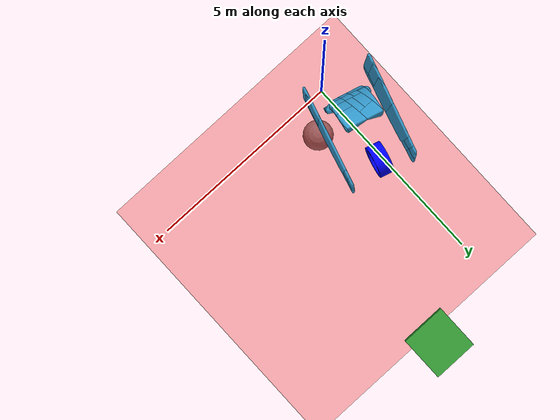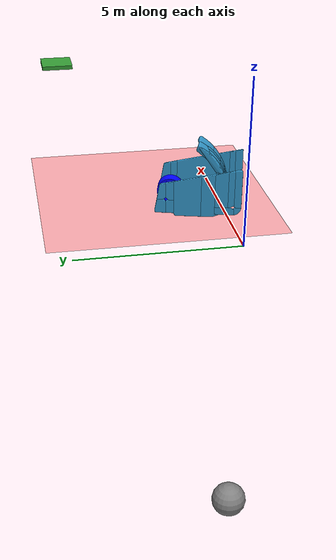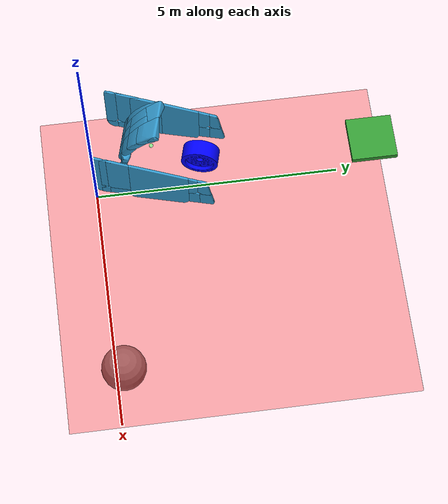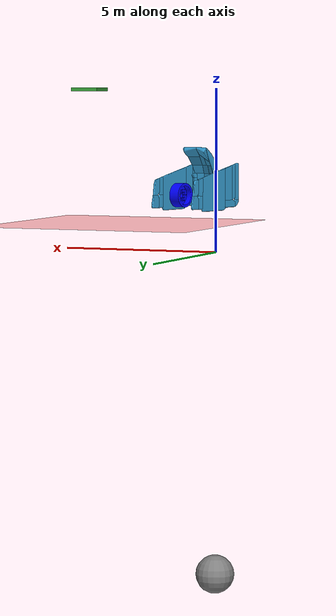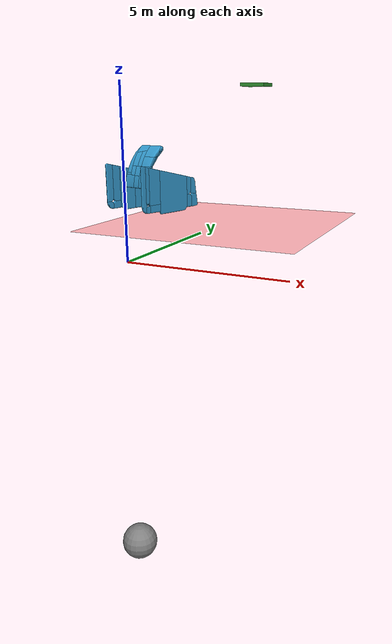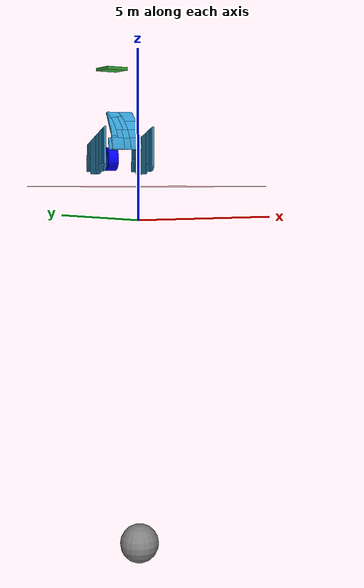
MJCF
<mujoco model="flywheel_test">
    <compiler meshdir="meshes"/>
   <asset>
        <mesh name="flywheel" file="flywheel.stl" scale="10 10 10" />
        <mesh name="hood_p0" file="decomposed/hood_part_0.obj" scale="0.01 0.01 0.01" />
        <mesh name="hood_p1" file="decomposed/hood_part_1.obj" scale="0.01 0.01 0.01" />
        <mesh name="hood_p2" file="decomposed/hood_part_2.obj" scale="0.01 0.01 0.01" />
        <mesh name="hood_p3" file="decomposed/hood_part_3.obj" scale="0.01 0.01 0.01" />
        <mesh name="hood_p4" file="decomposed/hood_part_4.obj" scale="0.01 0.01 0.01" />
        <mesh name="hood_p5" file="decomposed/hood_part_5.obj" scale="0.01 0.01 0.01" />
        <mesh name="hood_p6" file="decomposed/hood_part_6.obj" scale="0.01 0.01 0.01" />
        <mesh name="hood_p7" file="decomposed/hood_part_7.obj" scale="0.01 0.01 0.01" />
        <mesh name="hood_p8" file="decomposed/hood_part_8.obj" scale="0.01 0.01 0.01" />
        <mesh name="hood_p9" file="decomposed/hood_part_9.obj" scale="0.01 0.01 0.01" />
        <mesh name="hood_p10" file="decomposed/hood_part_10.obj" scale="0.01 0.01 0.01" />
        <mesh name="hood_p11" file="decomposed/hood_part_11.obj" scale="0.01 0.01 0.01" />
        <mesh name="hood_p12" file="decomposed/hood_part_12.obj" scale="0.01 0.01 0.01" />
        <mesh name="hood_p13" file="decomposed/hood_part_13.obj" scale="0.01 0.01 0.01" />
        <mesh name="hood_p14" file="decomposed/hood_part_14.obj" scale="0.01 0.01 0.01" />
        <mesh name="hood_p15" file="decomposed/hood_part_15.obj" scale="0.01 0.01 0.01" />
        <mesh name="hood_p16" file="decomposed/hood_part_16.obj" scale="0.01 0.01 0.01" />
        <mesh name="hood_p17" file="decomposed/hood_part_17.obj" scale="0.01 0.01 0.01" />
        <mesh name="hood_p18" file="decomposed/hood_part_18.obj" scale="0.01 0.01 0.01" />
        <mesh name="hood_p19" file="decomposed/hood_part_19.obj" scale="0.01 0.01 0.01" />
        <mesh name="hood_p20" file="decomposed/hood_part_20.obj" scale="0.01 0.01 0.01" />
        <mesh name="hood_p21" file="decomposed/hood_part_21.obj" scale="0.01 0.01 0.01" />
        <mesh name="hood_p22" file="decomposed/hood_part_22.obj" scale="0.01 0.01 0.01" />
        <mesh name="hood_p23" file="decomposed/hood_part_23.obj" scale="0.01 0.01 0.01" />
        <mesh name="hood_p24" file="decomposed/hood_part_24.obj" scale="0.01 0.01 0.01" />
        <mesh name="hood_p25" file="decomposed/hood_part_25.obj" scale="0.01 0.01 0.01" />
        <mesh name="hood_p26" file="decomposed/hood_part_26.obj" scale="0.01 0.01 0.01" />
        <mesh name="hood_p27" file="decomposed/hood_part_27.obj" scale="0.01 0.01 0.01" />
        <mesh name="hood_p28" file="decomposed/hood_part_28.obj" scale="0.01 0.01 0.01" />
        <mesh name="hood_p29" file="decomposed/hood_part_29.obj" scale="0.01 0.01 0.01" />
        <mesh name="hood_p30" file="decomposed/hood_part_30.obj" scale="0.01 0.01 0.01" />
        <mesh name="hood_p31" file="decomposed/hood_part_31.obj" scale="0.01 0.01 0.01" />
        <mesh name="hood_p32" file="decomposed/hood_part_32.obj" scale="0.01 0.01 0.01" />
        <mesh name="hood_p33" file="decomposed/hood_part_33.obj" scale="0.01 0.01 0.01" />
        <mesh name="hood_p34" file="decomposed/hood_part_34.obj" scale="0.01 0.01 0.01" />
        <mesh name="hood_p35" file="decomposed/hood_part_35.obj" scale="0.01 0.01 0.01" />
        <mesh name="hood_p36" file="decomposed/hood_part_36.obj" scale="0.01 0.01 0.01" />
        <mesh name="hood_p37" file="decomposed/hood_part_37.obj" scale="0.01 0.01 0.01" />
        <mesh name="hood_p38" file="decomposed/hood_part_38.obj" scale="0.01 0.01 0.01" />
        <mesh name="hood_p39" file="decomposed/hood_part_39.obj" scale="0.01 0.01 0.01" />
    </asset>
    <default>
        <geom contype="1" conaffinity="1" condim="3"
              friction="1.5 0.5 0.1"
              solref="0.01 1"
              solimp="0.9 0.95 0.001"/>
    </default>

    <!-- 2ms physics; RL applies controls every frame_skip steps (see env). -->
    <option timestep="0.002"
            gravity="0 0 -9.81"
            iterations="50"
            solver="PGS"/>

    <worldbody>
        <geom name="floor" type="plane" size="10 10 0.1" rgba=".9 0 0 1 " pos ="0 0 1"/>
        <body name="platform_body" pos="2 5 5">
            <geom name="random_platform" type="box" size="0.4 0.4 0.05" rgba="0.2 0.6 0.2 1" condim="3"/>
        </body>
        <!-- Yaw rotates around the turret center, not the hood mesh origin at the back. -->
        <body name="yaw_pivot" pos="0.138 1.348 2.292">
            <joint name="yaw joint"
                type="hinge"
                axis="0 0 1"
                damping="0.005"/>
            <body name="launcher_middle_hood" pos="-0.138 -1.348 -1.792">
            <geom type="mesh" mesh="hood_p0" rgba="0.2 0.6 0.8 1" condim="3" />
            <geom type="mesh" mesh="hood_p1" rgba="0.2 0.6 0.8 1" condim="3" />
            <geom type="mesh" mesh="hood_p2" rgba="0.2 0.6 0.8 1" condim="3" />
            <geom type="mesh" mesh="hood_p3" rgba="0.2 0.6 0.8 1" condim="3" />
            <geom type="mesh" mesh="hood_p4" rgba="0.2 0.6 0.8 1" condim="3" />
            <geom type="mesh" mesh="hood_p5" rgba="0.2 0.6 0.8 1" condim="3" />
            <geom type="mesh" mesh="hood_p6" rgba="0.2 0.6 0.8 1" condim="3" />
            <geom type="mesh" mesh="hood_p7" rgba="0.2 0.6 0.8 1" condim="3" />
            <geom type="mesh" mesh="hood_p8" rgba="0.2 0.6 0.8 1" condim="3" />
            <geom type="mesh" mesh="hood_p9" rgba="0.2 0.6 0.8 1" condim="3" />
            <geom type="mesh" mesh="hood_p10" rgba="0.2 0.6 0.8 1" condim="3" />
            <geom type="mesh" mesh="hood_p11" rgba="0.2 0.6 0.8 1" condim="3" />
            <geom type="mesh" mesh="hood_p12" rgba="0.2 0.6 0.8 1" condim="3" />
            <geom type="mesh" mesh="hood_p13" rgba="0.2 0.6 0.8 1" condim="3" />
            <geom type="mesh" mesh="hood_p14" rgba="0.2 0.6 0.8 1" condim="3" />
            <geom type="mesh" mesh="hood_p15" rgba="0.2 0.6 0.8 1" condim="3" />
            <geom type="mesh" mesh="hood_p16" rgba="0.2 0.6 0.8 1" condim="3" />
            <geom type="mesh" mesh="hood_p17" rgba="0.2 0.6 0.8 1" condim="3" />
            <geom type="mesh" mesh="hood_p18" rgba="0.2 0.6 0.8 1" condim="3" />
            <geom type="mesh" mesh="hood_p19" rgba="0.2 0.6 0.8 1" condim="3" />
            <geom type="mesh" mesh="hood_p20" rgba="0.2 0.6 0.8 1" condim="3" />
            <geom type="mesh" mesh="hood_p21" rgba="0.2 0.6 0.8 1" condim="3" />
            <geom type="mesh" mesh="hood_p22" rgba="0.2 0.6 0.8 1" condim="3" />
            <geom type="mesh" mesh="hood_p23" rgba="0.2 0.6 0.8 1" condim="3" />
            <geom type="mesh" mesh="hood_p24" rgba="0.2 0.6 0.8 1" condim="3" />
            <geom type="mesh" mesh="hood_p25" rgba="0.2 0.6 0.8 1" condim="3" />
            <geom type="mesh" mesh="hood_p26" rgba="0.2 0.6 0.8 1" condim="3" />
            <geom type="mesh" mesh="hood_p27" rgba="0.2 0.6 0.8 1" condim="3" />
            <geom type="mesh" mesh="hood_p28" rgba="0.2 0.6 0.8 1" condim="3" />
            <geom type="mesh" mesh="hood_p29" rgba="0.2 0.6 0.8 1" condim="3" />
            <geom type="mesh" mesh="hood_p30" rgba="0.2 0.6 0.8 1" condim="3" />
            <geom type="mesh" mesh="hood_p31" rgba="0.2 0.6 0.8 1" condim="3" />
            <geom type="mesh" mesh="hood_p32" rgba="0.2 0.6 0.8 1" condim="3" />
            <geom type="mesh" mesh="hood_p33" rgba="0.2 0.6 0.8 1" condim="3" />
            <geom type="mesh" mesh="hood_p34" rgba="0.2 0.6 0.8 1" condim="3" />
            <geom type="mesh" mesh="hood_p35" rgba="0.2 0.6 0.8 1" condim="3" />
            <geom type="mesh" mesh="hood_p36" rgba="0.2 0.6 0.8 1" condim="3" />
            <geom type="mesh" mesh="hood_p37" rgba="0.2 0.6 0.8 1" condim="3" />
            <geom type="mesh" mesh="hood_p38" rgba="0.2 0.6 0.8 1" condim="3" />
            <geom type="mesh" mesh="hood_p39" rgba="0.2 0.6 0.8 1" condim="3" />

            <site name="shooter_spawn" pos="0.1 1.2 1.65" size="0.04" rgba="0 1 0 0.4"/>

            <!-- Flywheel -->
            <body name="flywheel" pos="0.45 2.1 1.35" euler="0 0 -15">
                <joint name="flywheel_joint"
                    type="hinge"
                    axis="1 0 0"
                    damping="0.005"/>

                <geom type="mesh"
                    mesh="flywheel"
                    density="1000"
                    friction="2.5 0.8 0.1"
                    solref="0.008 1"
                    solimp="0.9 0.95 0.001"
                    euler="0 90 0"
                    rgba="0 0 1 1"/>
            </body>
            </body>
        </body>

        <light diffuse="5 5 5" pos="0 0 0.05" dir="0 0 -1"/>

        <body name="ball" pos="0 0 -10">
            <freejoint/>

            <geom type="sphere"
                size="0.6"
                density="100"
                friction="1.5 0.5 0.1"
                solref="0.01 1"
                solimp="0.9 0.95 0.001" />
        </body>

    </worldbody>

    <actuator>
        <general name="flywheel_motor" joint="flywheel_joint"
            gear="1800"
            dyntype="filter"
            dynprm="0.02"
            gaintype="fixed"
            gainprm="1"
            biastype="none"
            ctrllimited="true"
            ctrlrange="-1 1"/>
         <general name="yaw_motor" joint="yaw joint"
            gear="200"
            dyntype="filter"
            dynprm="0.02"
            gaintype="fixed"
            gainprm="1"
            biastype="none"
            ctrllimited="true"
            ctrlrange="-1 1"/>
        <general name="ball_spawn" site="shooter_spawn"
            ctrllimited="true" ctrlrange="0 1"
            dyntype="none" gaintype="fixed" gainprm="0" biastype="none"/>
    </actuator>

</mujoco>
